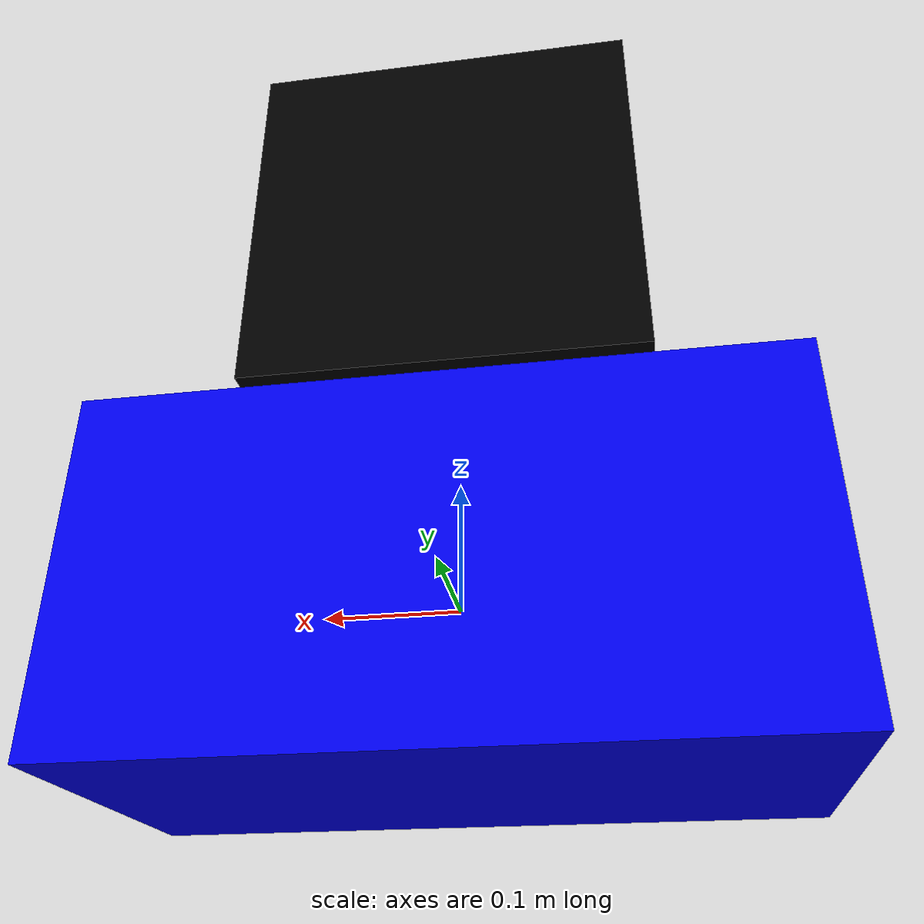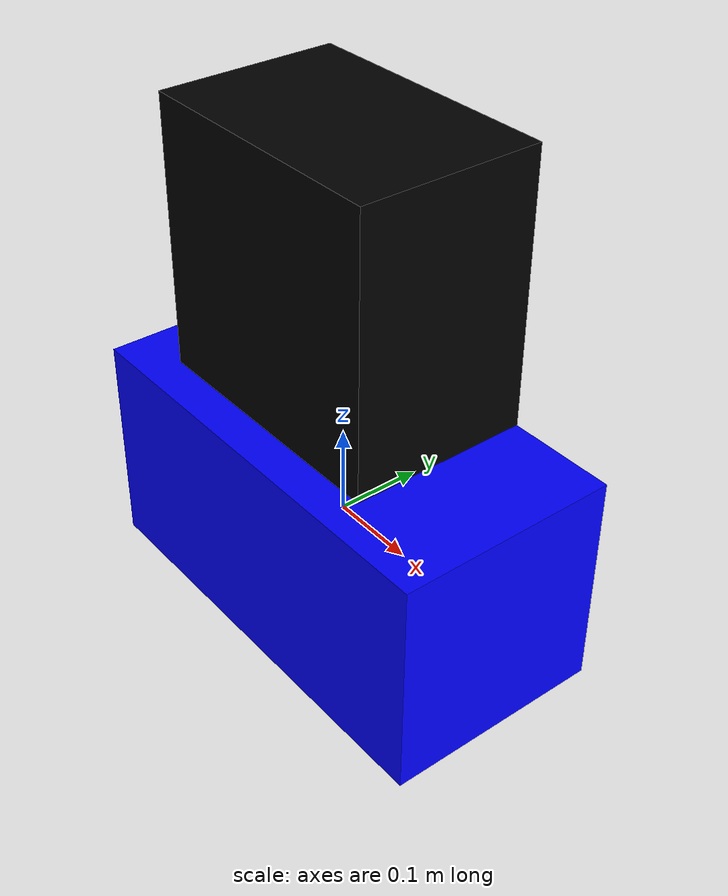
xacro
<?xml version="1.0"?>
<robot xmlns:xacro="http://www.ros.org/wiki/xacro" name="box_robot">

  <!-- Box Link -->
  <link name="base_link">
    <visual>
      <geometry>
        <box size="0.5 0.25 0.25"/>
      </geometry>
      <material name="blue">
        <color rgba="0 0 1 1"/>
      </material>
    </visual>
    <inertial>
      <mass value="1.0"/>
      <origin xyz="0 0 0"/>
      <inertia
        ixx="0.01" ixy="0.0" ixz="0.0"
        iyy="0.01" iyz="0.0"
        izz="0.01"/>
    </inertial>
  </link>

  <!-- 包含相机的 xacro 文件 -->  <!-- 相机相对于父链接（parent）的位姿 -->
  <xacro:include filename="$(find gazebo_simulator)/urdf/camera_sensor.xacro"/>
  <xacro:camera_sensor parent="base_link" xyz="0 0 0.3" rpy="0 0 0"/>

  <!-- 包含激光雷达的 xacro 文件 -->

</robot>

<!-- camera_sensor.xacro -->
<robot xmlns:xacro="http://www.ros.org/wiki/xacro">

  <!-- Camera Sensor -->
  <xacro:macro name="camera_sensor" params="parent xyz rpy">
    <link name="camera_link">
      <visual>
        <geometry>
          <box size="0.3 0.2 0.3"/>
        </geometry>
        <material name="black">
          <color rgba="0 0 0 1"/>
        </material>
      </visual>
      <inertial>
        <mass value="0.2"/>
        <inertia ixx="0.001" ixy="0" ixz="0" iyy="0.001" iyz="0" izz="0.001"/>
      </inertial>
    </link>

    <joint name="camera_joint" type="fixed">
      <parent link="${parent}"/>
      <child link="camera_link"/>
      <origin xyz="${xyz}" rpy="${rpy}"/>
    </joint>

    <!-- Gazebo Camera Plugin -->
    <gazebo reference="camera_link">
      <sensor type="camera" name="camera_sensor">
        <update_rate>30.0</update_rate>
        <camera name="camera">
          <horizontal_fov>1.047</horizontal_fov>
          <image>
            <width>640</width>
            <height>480</height>
            <format>R8G8B8</format>
          </image>
          <clip>
            <near>0.1</near>
            <far>100</far>
          </clip>
        </camera>
        <plugin name="camera_controller" filename="libgazebo_ros_openni_kinect.so">
          <alwaysOn>true</alwaysOn>
          <updateRate>30.0</updateRate>
          <cameraName>camera</cameraName>
          <imageTopicName>color/image_raw2</imageTopicName>
          <cameraInfoTopicName>color/camera_info2</cameraInfoTopicName>
          <depthImageTopicName>depth/image_raw2</depthImageTopicName>
          <depthCameraInfoTopicName>depth/camera_info2</depthCameraInfoTopicName>
          <frameName>camera_link</frameName>
          <hackBaseline>0.07</hackBaseline>
          <distortionK1>0.0</distortionK1>
          <distortionK2>0.0</distortionK2>
          <distortionK3>0.0</distortionK3>
          <distortionT1>0.0</distortionT1>
          <distortionT2>0.0</distortionT2>
        </plugin>
      </sensor>
    </gazebo>
  </xacro:macro>

</robot>
